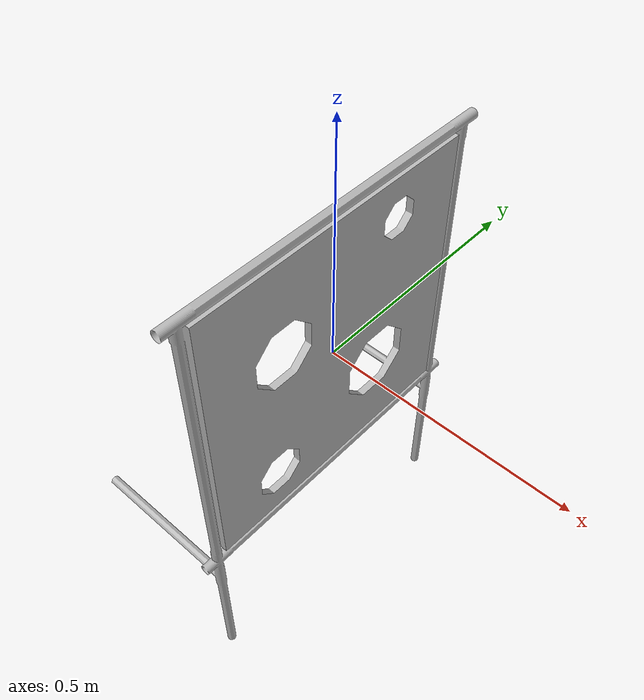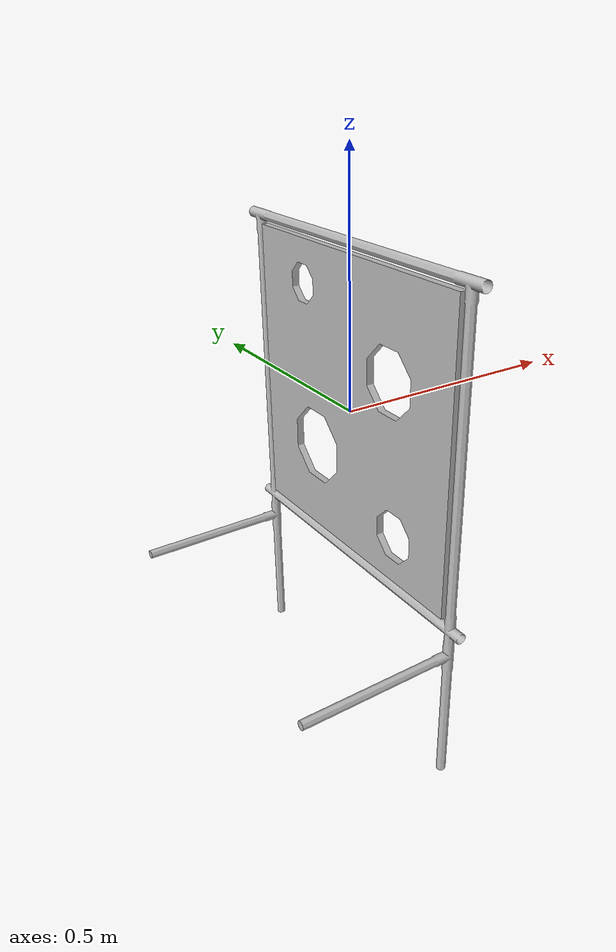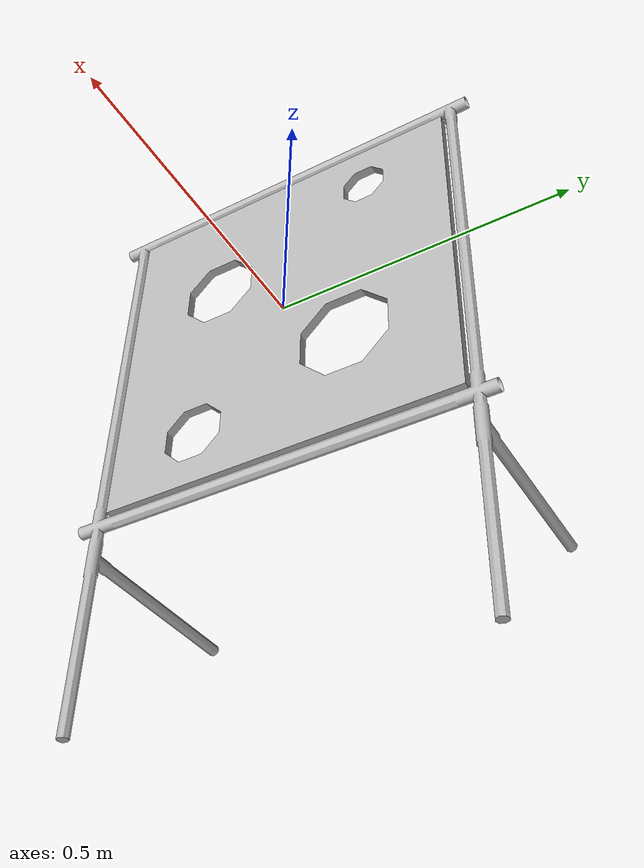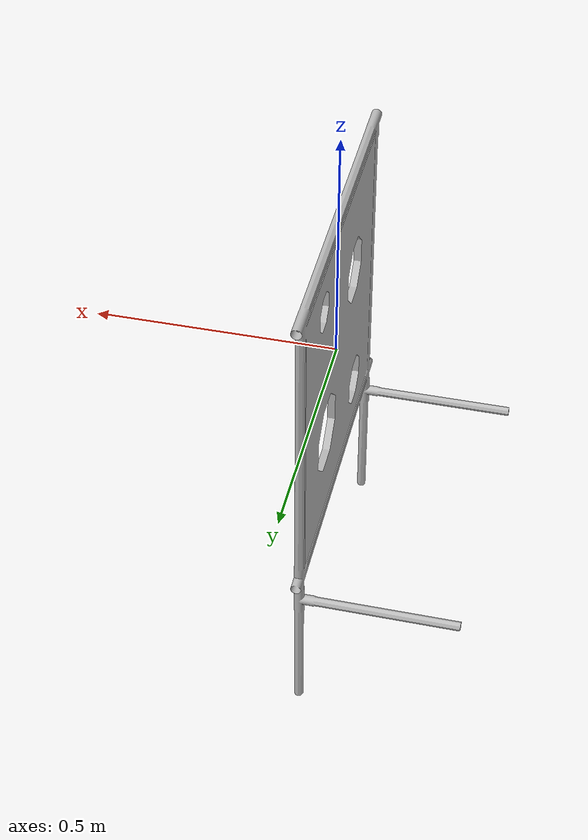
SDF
<?xml version="1.0"?>
<sdf version='1.7'>
  <model name='mapping_torpedoes_2024'>
    <static>true</static>
    <link name='base_link'>
      <pose frame=''>0 0 0 0 -0 0</pose>
      <inertial>
        <pose frame=''>0 0 0 0 -0 0</pose>
        <mass>1</mass>
        <inertia>
          <ixx>0.166667</ixx>
          <ixy>0</ixy>
          <ixz>0</ixz>
          <iyy>0.166667</iyy>
          <iyz>0</iyz>
          <izz>0.166667</izz>
        </inertia>
      </inertial>
      <collision name='base_link_collision'>
        <pose frame=''>0 0 0 0 -0 0</pose>
        <geometry>
          <mesh>
            <uri>file://mapping_torpedoes_2024/mapping_torpedoes.dae</uri>
          </mesh>
        </geometry>
      </collision>
      <visual name='base_link_visual'>
        <pose frame=''>0 0 0 0 -0 0</pose>
        <geometry>
          <mesh>
            <uri>file://mapping_torpedoes_2024/mapping_torpedoes.dae</uri>
          </mesh>
        </geometry>
      </visual>
    </link>
  </model>
</sdf>
